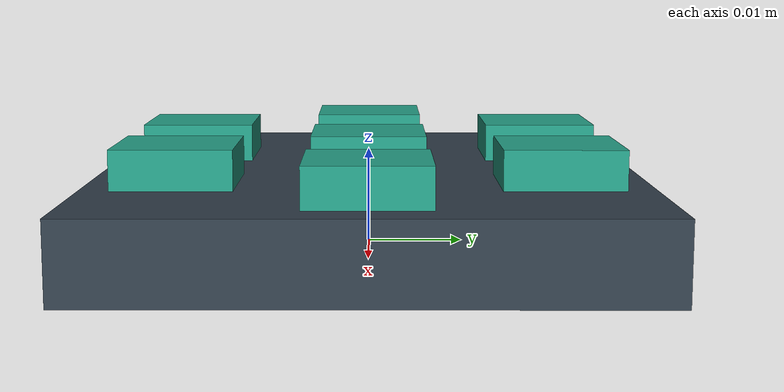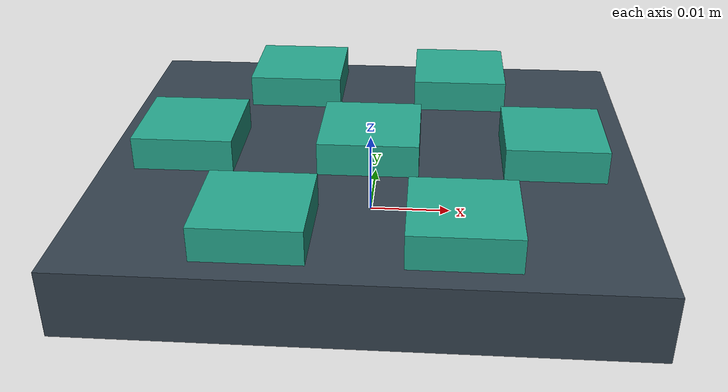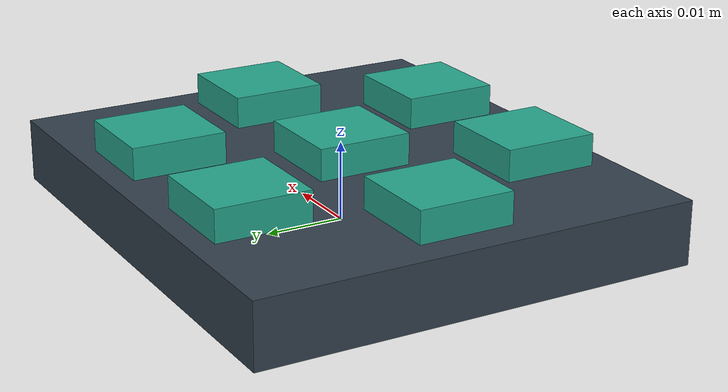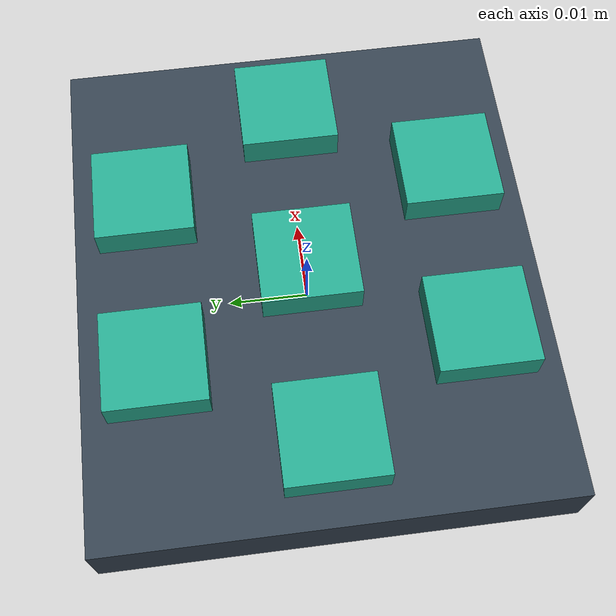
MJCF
<mujoco model="educational_seven_pad">
  <!-- Original synthetic layout: seven rigid boxes, not a product replica. -->
  <asset>
    <material name="pad_material" rgba="0.15 0.65 0.55 1"/>
    <material name="housing_material" rgba="0.2 0.25 0.3 1"/>
  </asset>
  <worldbody>
    <body name="sensor_root">
      <site name="sensor_base" pos="0 0 0" size="0.001" group="4"/>
      <site name="range_frame" pos="0 0 0.012" size="0.001" group="4"/>
      <geom name="housing_visual" type="box" pos="0 0 0.004" size="0.032 0.028 0.004"
            material="housing_material" contype="0" conaffinity="0" mass="0" group="1"/>
      <body name="force_f1" pos="0 0 0.010">
        <geom name="force_f1_shape" type="box" size="0.006 0.006 0.002" material="pad_material"/>
      </body>
      <body name="force_f2" pos="0.022 0 0.010">
        <geom name="force_f2_shape" type="box" size="0.006 0.006 0.002" material="pad_material"/>
      </body>
      <body name="force_f3" pos="0.011 0.019 0.010">
        <geom name="force_f3_shape" type="box" size="0.006 0.006 0.002" material="pad_material"/>
      </body>
      <body name="force_f4" pos="-0.011 0.019 0.010">
        <geom name="force_f4_shape" type="box" size="0.006 0.006 0.002" material="pad_material"/>
      </body>
      <body name="force_f5" pos="-0.022 0 0.010">
        <geom name="force_f5_shape" type="box" size="0.006 0.006 0.002" material="pad_material"/>
      </body>
      <body name="force_f6" pos="-0.011 -0.019 0.010">
        <geom name="force_f6_shape" type="box" size="0.006 0.006 0.002" material="pad_material"/>
      </body>
      <body name="force_f7" pos="0.011 -0.019 0.010">
        <geom name="force_f7_shape" type="box" size="0.006 0.006 0.002" material="pad_material"/>
      </body>
    </body>
  </worldbody>
</mujoco>
